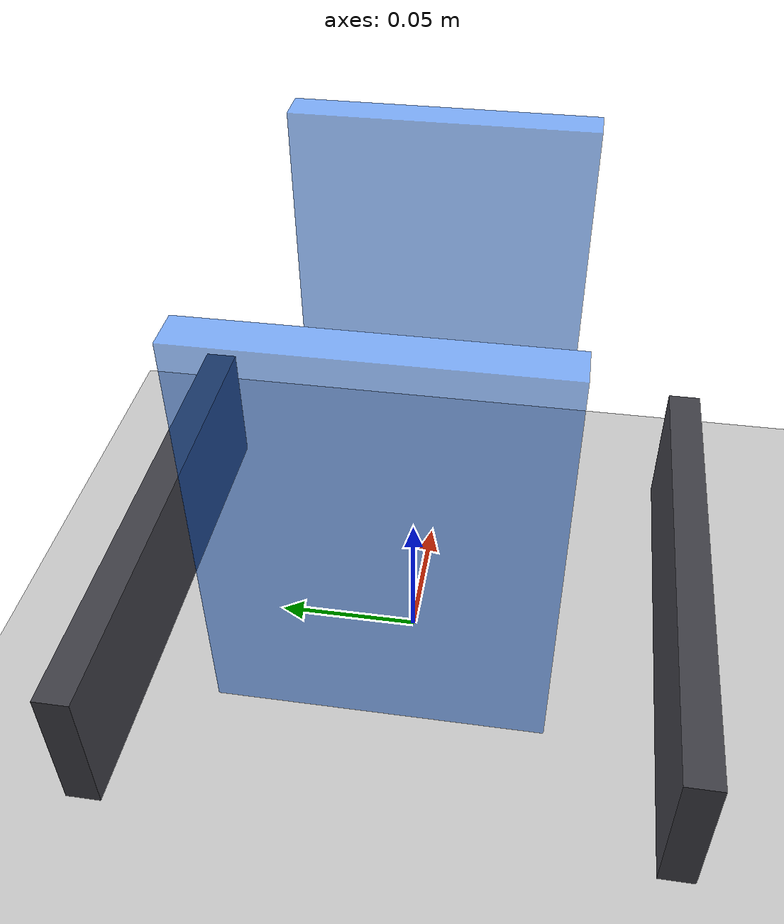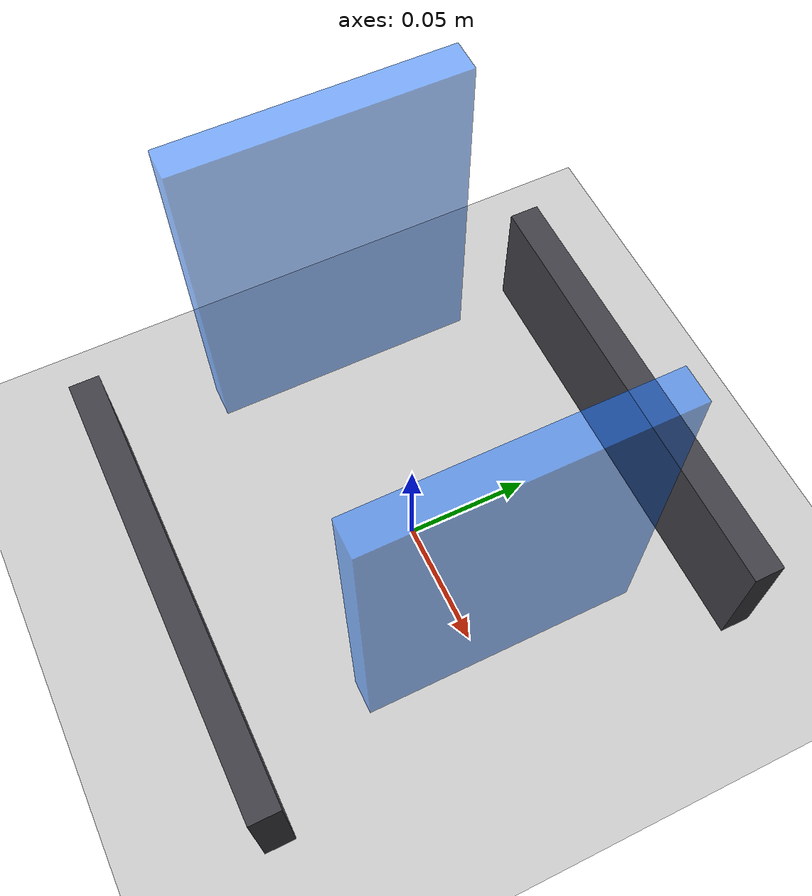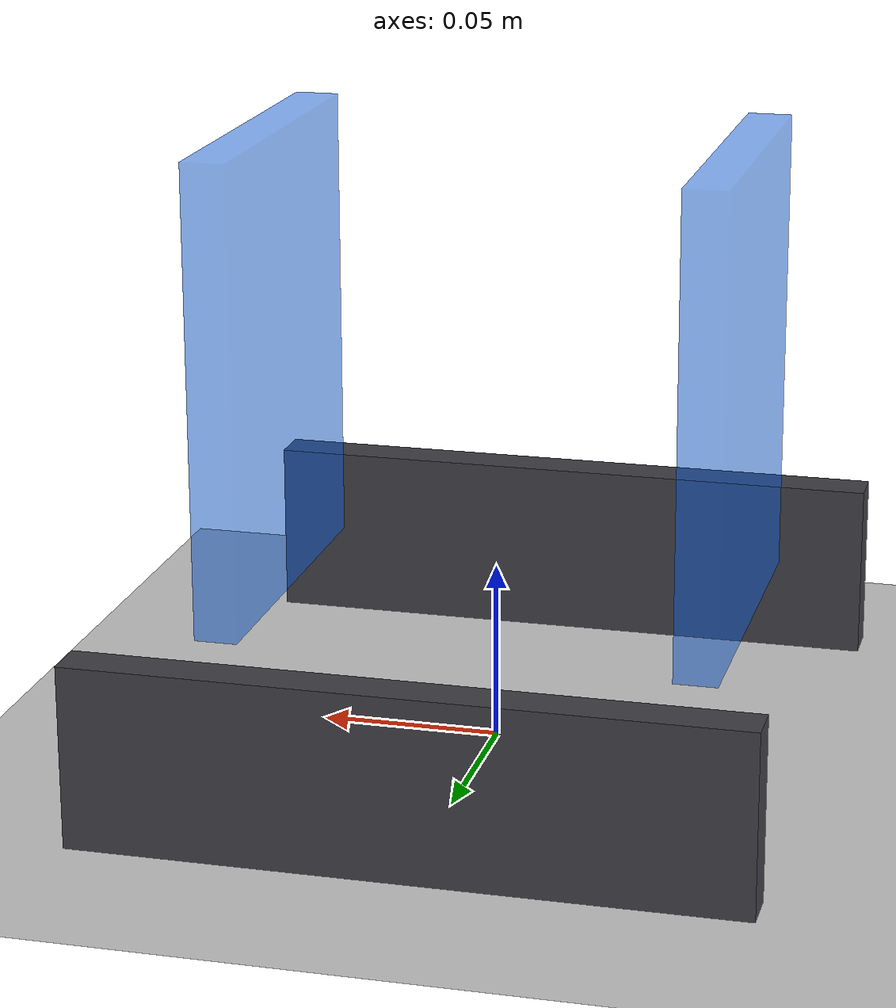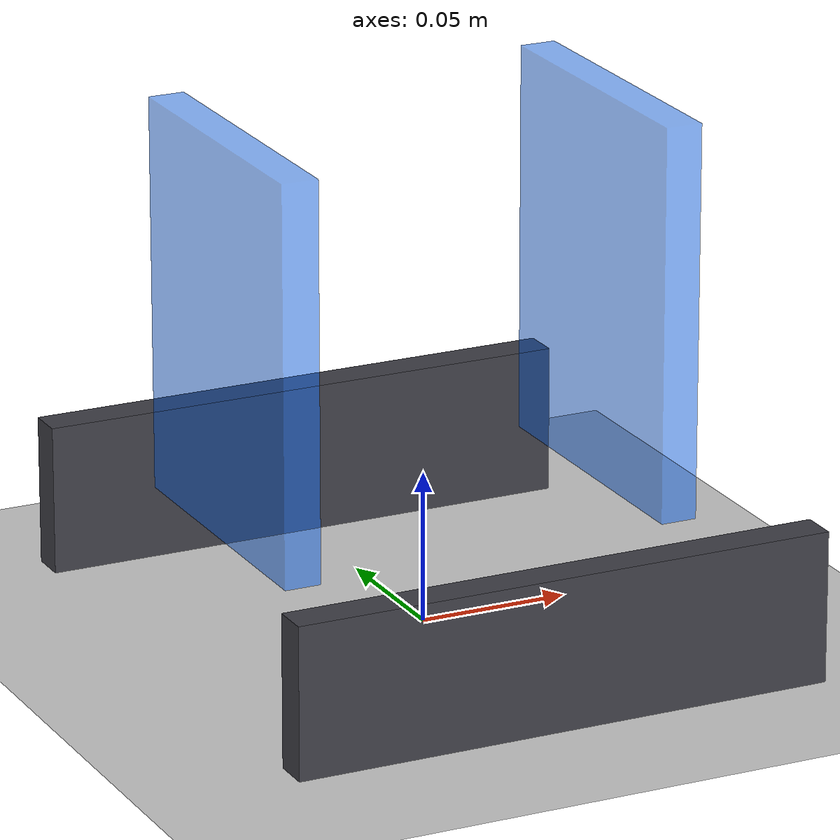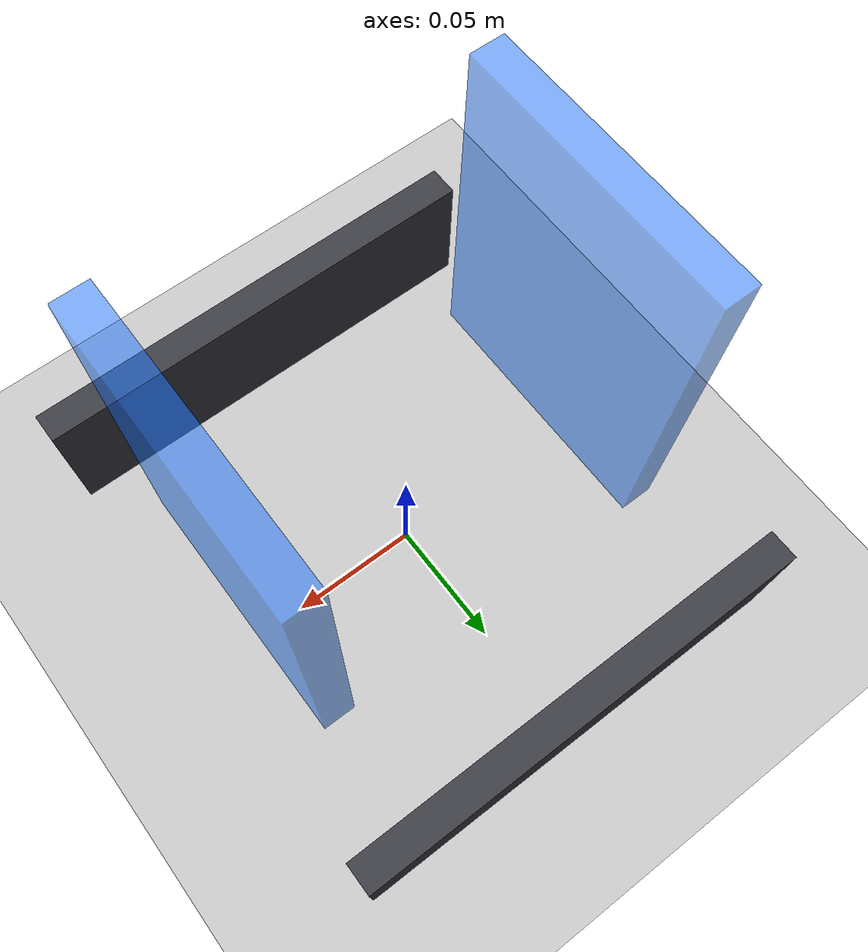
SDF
<?xml version="1.0" ?>
<sdf version="1.6">
  <world name="imu_debug">
    <physics type="ode">
      <max_step_size>0.001</max_step_size>
      <real_time_factor>1.0</real_time_factor>
      <real_time_update_rate>1000</real_time_update_rate>
    </physics>

    <!-- Global light source -->
    <include>
      <uri>model://sun</uri>
    </include>

    <!-- Ground plane -->
    <include>
      <uri>model://ground_plane</uri>
    </include>

    <model name="front_pitch_support">
      <static>true</static>
      <pose>0.065 0 0.105 0 0 0</pose>
      <link name="link">
        <visual name="visual">
          <geometry>
            <box>
              <size>0.012 0.100 0.130</size>
            </box>
          </geometry>
          <material>
            <ambient>0.1 0.45 1.0 0.55</ambient>
            <diffuse>0.1 0.45 1.0 0.55</diffuse>
          </material>
        </visual>
        <collision name="collision">
          <geometry>
            <box>
              <size>0.012 0.100 0.130</size>
            </box>
          </geometry>
        </collision>
      </link>
    </model>

    <model name="rear_pitch_support">
      <static>true</static>
      <pose>-0.065 0 0.105 0 0 0</pose>
      <link name="link">
        <visual name="visual">
          <geometry>
            <box>
              <size>0.012 0.100 0.130</size>
            </box>
          </geometry>
          <material>
            <ambient>0.1 0.45 1.0 0.55</ambient>
            <diffuse>0.1 0.45 1.0 0.55</diffuse>
          </material>
        </visual>
        <collision name="collision">
          <geometry>
            <box>
              <size>0.012 0.100 0.130</size>
            </box>
          </geometry>
        </collision>
      </link>
    </model>

    <!-- Low side rails keep the wheels near the cradle while leaving pitch free. -->
    <model name="left_wheel_rail">
      <static>true</static>
      <pose>0 0.095 0.025 0 0 0</pose>
      <link name="link">
        <visual name="visual">
          <geometry>
            <box>
              <size>0.180 0.012 0.050</size>
            </box>
          </geometry>
          <material>
            <ambient>0.25 0.25 0.28 1.0</ambient>
            <diffuse>0.25 0.25 0.28 1.0</diffuse>
          </material>
        </visual>
        <collision name="collision">
          <geometry>
            <box>
              <size>0.180 0.012 0.050</size>
            </box>
          </geometry>
        </collision>
      </link>
    </model>

    <model name="right_wheel_rail">
      <static>true</static>
      <pose>0 -0.095 0.025 0 0 0</pose>
      <link name="link">
        <visual name="visual">
          <geometry>
            <box>
              <size>0.180 0.012 0.050</size>
            </box>
          </geometry>
          <material>
            <ambient>0.25 0.25 0.28 1.0</ambient>
            <diffuse>0.25 0.25 0.28 1.0</diffuse>
          </material>
        </visual>
        <collision name="collision">
          <geometry>
            <box>
              <size>0.180 0.012 0.050</size>
            </box>
          </geometry>
        </collision>
      </link>
    </model>

    <gui fullscreen="0">
      <camera name="user_camera">
        <pose>0.45 -0.45 0.35 0 0.45 0.78</pose>
      </camera>
    </gui>
  </world>
</sdf>
